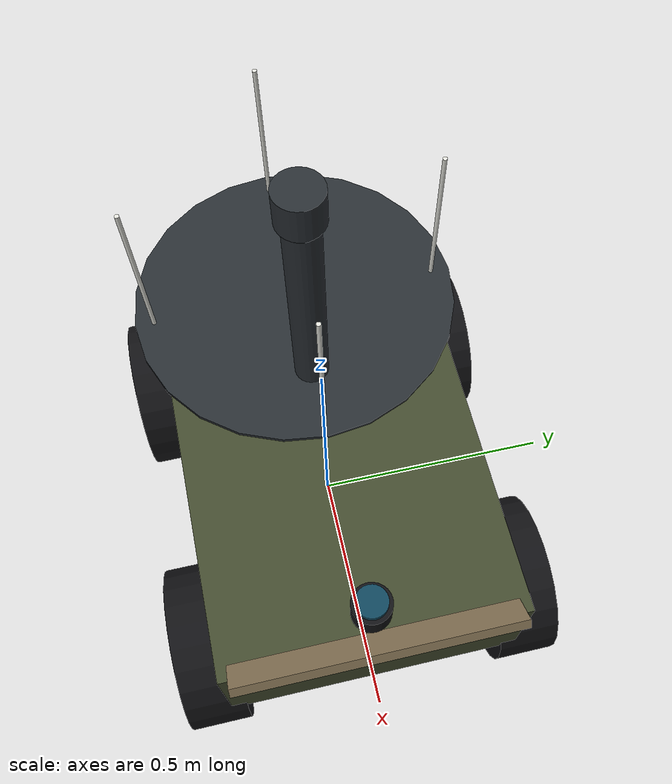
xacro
<?xml version="1.0"?>
<robot name="ugv" xmlns:xacro="http://www.ros.org/wiki/xacro">

  <xacro:arg name="prefix" default=""/>
  <xacro:arg name="namespace" default="ugv_1"/>
  <!-- Keep TF trees disjoint when several of these spawn in one world. -->
  <xacro:arg name="tf_prefix" default="ugv_1"/>

  <xacro:property name="ns" value="$(arg namespace)"/>
  <xacro:property name="tfp" value="$(arg tf_prefix)"/>

  <xacro:include filename="$(find swarm_description)/urdf/common/materials.xacro"/>
  <xacro:include filename="$(find swarm_description)/urdf/common/inertia.xacro"/>
  <xacro:include filename="$(find swarm_description)/urdf/common/sensors.xacro"/>

  <!-- ============================= dimensions ============================ -->
  <xacro:property name="chassis_x" value="0.92"/>
  <xacro:property name="chassis_y" value="0.58"/>
  <xacro:property name="chassis_z" value="0.24"/>
  <xacro:property name="chassis_mass" value="28.0"/>

  <xacro:property name="wheel_radius" value="0.165"/>
  <xacro:property name="wheel_width" value="0.120"/>
  <xacro:property name="wheel_mass" value="2.4"/>
  <xacro:property name="wheelbase" value="0.620"/>
  <xacro:property name="track" value="0.640"/>

  <xacro:property name="mast_height" value="0.46"/>
  <xacro:property name="chassis_z_offset" value="${wheel_radius + 0.045}"/>

  <!-- ============================== base ================================= -->
  <!-- base_footprint sits on the ground plane; nav2 and the costmaps expect it. -->
  <link name="base_footprint"/>

  <joint name="base_joint" type="fixed">
    <parent link="base_footprint"/>
    <child link="base_link"/>
    <origin xyz="0 0 ${chassis_z_offset}" rpy="0 0 0"/>
  </joint>

  <link name="base_link">
    <visual>
      <geometry><box size="${chassis_x} ${chassis_y} ${chassis_z}"/></geometry>
      <material name="olive_drab"/>
    </visual>
    <!-- Sloped glacis plate, forward. -->
    <visual>
      <origin xyz="${chassis_x/2 - 0.04} 0 ${chassis_z/2 - 0.02}" rpy="0 -0.6 0"/>
      <geometry><box size="0.16 ${chassis_y - 0.04} 0.02"/></geometry>
      <material name="coyote_tan"/>
    </visual>
    <collision>
      <geometry><box size="${chassis_x} ${chassis_y} ${chassis_z}"/></geometry>
    </collision>
    <xacro:box_inertial mass="${chassis_mass}" x="${chassis_x}" y="${chassis_y}" z="${chassis_z}">
      <!-- Battery and drivetrain sit low: deliberately low CoG for a skid-steer. -->
      <origin xyz="0 0 -0.055"/>
    </xacro:box_inertial>
  </link>
  <!-- Sensor mast. -->
  <joint name="mast_joint" type="fixed">
    <parent link="base_link"/>
    <child link="mast_link"/>
    <origin xyz="-0.12 0 ${chassis_z/2 + mast_height/2}" rpy="0 0 0"/>
  </joint>
  <link name="mast_link">
    <visual>
      <geometry><cylinder radius="0.035" length="${mast_height}"/></geometry>
      <material name="gunmetal"/>
    </visual>
    <collision><geometry><cylinder radius="0.035" length="${mast_height}"/></geometry></collision>
    <xacro:cylinder_inertial mass="1.1" radius="0.035" length="${mast_height}">
      <origin xyz="0 0 0"/>
    </xacro:cylinder_inertial>
  </link>
  <!-- ============================== wheels ================================ -->
  <xacro:macro name="ugv_wheel" params="name x y">
    <joint name="${name}_wheel_joint" type="continuous">
      <parent link="base_link"/>
      <child link="${name}_wheel_link"/>
      <origin xyz="${x} ${y} ${-chassis_z/2 - 0.045}" rpy="${-pi/2} 0 0"/>
      <axis xyz="0 0 1"/>
      <limit effort="90.0" velocity="22.0"/>
      <dynamics damping="0.08" friction="0.5"/>
    </joint>
    <link name="${name}_wheel_link">
      <visual>
        <geometry><cylinder radius="${wheel_radius}" length="${wheel_width}"/></geometry>
        <material name="matte_black"/>
      </visual>
      <!-- Hub, so the wheel rolling is actually visible in RViz. -->
      <visual>
        <origin xyz="0 0 ${wheel_width/2 + 0.002}"/>
        <geometry><box size="${wheel_radius*1.1} 0.03 0.006"/></geometry>
        <material name="coyote_tan"/>
      </visual>
      <collision>
        <geometry><cylinder radius="${wheel_radius}" length="${wheel_width}"/></geometry>
      </collision>
      <xacro:wheel_inertial mass="${wheel_mass}" radius="${wheel_radius}" width="${wheel_width}">
        <origin xyz="0 0 0"/>
      </xacro:wheel_inertial>
    </link>
  </xacro:macro>

  <xacro:ugv_wheel name="front_left"  x="${wheelbase/2}"  y="${track/2}"/>
  <xacro:ugv_wheel name="front_right" x="${wheelbase/2}"  y="${-track/2}"/>
  <xacro:ugv_wheel name="rear_left"   x="${-wheelbase/2}" y="${track/2}"/>
  <xacro:ugv_wheel name="rear_right"  x="${-wheelbase/2}" y="${-track/2}"/>

  <!-- ============================== sensors =============================== -->
  <!-- Hull-line 2D scanner for local obstacle avoidance / potential fields. -->
  <xacro:lidar_2d prefix="lidar" parent="base_link"
                  xyz="${chassis_x/2 - 0.06} 0 ${chassis_z/2 + 0.045}"
                  samples="720" range_max="30.0" rate="15.0"/>

  <!-- Mast-top 3D scanner: building faces and rubble, for the shared map. -->
  <xacro:lidar_3d prefix="lidar3d" parent="mast_link"
                  xyz="0 0 ${mast_height/2 + 0.05}"
                  h_samples="360" v_samples="16" range_max="40.0" rate="10.0"/>

  <xacro:camera_rgb prefix="front_camera" parent="base_link"
                    xyz="${chassis_x/2 - 0.005} 0 ${chassis_z/2 - 0.01}"
                    hfov="1.5708" width="640" height="480" rate="20.0"/>

  <xacro:imu_sensor prefix="imu" parent="base_link" xyz="0 0 0.02" rate="100.0"/>

  <xacro:gnss_sensor prefix="gnss" parent="mast_link"
                     xyz="0 0 ${mast_height/2 + 0.012}" noise="0.9"/>

  <!-- The team's reference DF array: 4 elements on a 0.30 m baseline. -->
  <xacro:rf_df_array prefix="rf_df" parent="base_link"
                     xyz="-0.30 0 ${chassis_z/2 + 0.01}"
                     elements="4" baseline="0.30" mast="0.34"
                     band_mhz="433.0" sensitivity_dbm="-112.0"/>

  <xacro:marker_dispenser prefix="dispenser" parent="base_link"
                          xyz="-0.10 0 ${-chassis_z/2 - 0.045}" capacity="4"/>

  <!-- ============================= plugins ================================ -->
</robot>

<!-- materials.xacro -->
<robot xmlns:xacro="http://www.ros.org/wiki/xacro">

  <material name="olive_drab"><color rgba="0.26 0.29 0.18 1.0"/></material>
  <material name="coyote_tan"><color rgba="0.52 0.45 0.33 1.0"/></material>
  <material name="gunmetal"><color rgba="0.16 0.18 0.20 1.0"/></material>
  <material name="matte_black"><color rgba="0.07 0.07 0.08 1.0"/></material>
  <material name="sensor_glass"><color rgba="0.10 0.35 0.45 0.85"/></material>
  <material name="hazard_amber"><color rgba="0.90 0.60 0.05 1.0"/></material>
  <material name="signal_red"><color rgba="0.75 0.10 0.10 1.0"/></material>
  <material name="antenna_white"><color rgba="0.88 0.88 0.85 1.0"/></material>
</robot>

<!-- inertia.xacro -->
<robot xmlns:xacro="http://www.ros.org/wiki/xacro">

  <xacro:macro name="box_inertial" params="mass x y z *origin">
    <inertial>
      <xacro:insert_block name="origin"/>
      <mass value="${mass}"/>
      <inertia
        ixx="${mass * (y*y + z*z) / 12.0}" ixy="0.0" ixz="0.0"
        iyy="${mass * (x*x + z*z) / 12.0}" iyz="0.0"
        izz="${mass * (x*x + y*y) / 12.0}"/>
    </inertial>
  </xacro:macro>

  <!-- Cylinder about its own z axis. -->
  <xacro:macro name="cylinder_inertial" params="mass radius length *origin">
    <inertial>
      <xacro:insert_block name="origin"/>
      <mass value="${mass}"/>
      <inertia
        ixx="${mass * (3.0*radius*radius + length*length) / 12.0}" ixy="0.0" ixz="0.0"
        iyy="${mass * (3.0*radius*radius + length*length) / 12.0}" iyz="0.0"
        izz="${mass * radius * radius / 2.0}"/>
    </inertial>
  </xacro:macro>

  <!-- Wheel: cylinder rolling about y, as mounted on these platforms. -->
  <xacro:macro name="wheel_inertial" params="mass radius width *origin">
    <inertial>
      <xacro:insert_block name="origin"/>
      <mass value="${mass}"/>
      <inertia
        ixx="${mass * (3.0*radius*radius + width*width) / 12.0}" ixy="0.0" ixz="0.0"
        iyy="${mass * radius * radius / 2.0}" iyz="0.0"
        izz="${mass * (3.0*radius*radius + width*width) / 12.0}"/>
    </inertial>
  </xacro:macro>

  <xacro:macro name="sphere_inertial" params="mass radius *origin">
    <inertial>
      <xacro:insert_block name="origin"/>
      <mass value="${mass}"/>
      <inertia
        ixx="${2.0 * mass * radius * radius / 5.0}" ixy="0.0" ixz="0.0"
        iyy="${2.0 * mass * radius * radius / 5.0}" iyz="0.0"
        izz="${2.0 * mass * radius * radius / 5.0}"/>
    </inertial>
  </xacro:macro>
</robot>

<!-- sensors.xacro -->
<robot xmlns:xacro="http://www.ros.org/wiki/xacro">
  <xacro:include filename="$(find swarm_description)/urdf/common/inertia.xacro"/>

  <!-- ===================== 2D scanning LiDAR ============================= -->
  <xacro:macro name="lidar_2d" params="prefix parent xyz rpy:='0 0 0'
                                       samples:=720 range_max:=30.0 rate:=15.0
                                       min_angle:=${-pi} max_angle:=${pi}">
    <joint name="${prefix}_joint" type="fixed">
      <parent link="${parent}"/>
      <child link="${prefix}_link"/>
      <origin xyz="${xyz}" rpy="${rpy}"/>
    </joint>
    <link name="${prefix}_link">
      <visual>
        <geometry><cylinder radius="0.038" length="0.055"/></geometry>
        <material name="matte_black"/>
      </visual>
      <visual>
        <origin xyz="0 0 0.034"/>
        <geometry><cylinder radius="0.030" length="0.014"/></geometry>
        <material name="sensor_glass"/>
      </visual>
      <collision><geometry><cylinder radius="0.038" length="0.055"/></geometry></collision>
      <xacro:cylinder_inertial mass="0.18" radius="0.038" length="0.055">
        <origin xyz="0 0 0"/>
      </xacro:cylinder_inertial>
    </link>
  </xacro:macro>

  <!-- =============== 3D LiDAR (tilted multi-layer scanner) =============== -->
  <xacro:macro name="lidar_3d" params="prefix parent xyz rpy:='0 0 0'
                                       h_samples:=360 v_samples:=16 range_max:=40.0 rate:=10.0">
    <joint name="${prefix}_joint" type="fixed">
      <parent link="${parent}"/>
      <child link="${prefix}_link"/>
      <origin xyz="${xyz}" rpy="${rpy}"/>
    </joint>
    <link name="${prefix}_link">
      <visual>
        <geometry><cylinder radius="0.045" length="0.072"/></geometry>
        <material name="gunmetal"/>
      </visual>
      <collision><geometry><cylinder radius="0.045" length="0.072"/></geometry></collision>
      <xacro:cylinder_inertial mass="0.42" radius="0.045" length="0.072">
        <origin xyz="0 0 0"/>
      </xacro:cylinder_inertial>
    </link>
  </xacro:macro>

  <!-- ========================= RGB camera =============================== -->
  <xacro:macro name="camera_rgb" params="prefix parent xyz rpy:='0 0 0'
                                         width:=640 height:=480 hfov:=1.3962
                                         rate:=20.0 topic:=image_raw">
    <joint name="${prefix}_joint" type="fixed">
      <parent link="${parent}"/>
      <child link="${prefix}_link"/>
      <origin xyz="${xyz}" rpy="${rpy}"/>
    </joint>
    <link name="${prefix}_link">
      <visual>
        <geometry><box size="0.028 0.090 0.028"/></geometry>
        <material name="matte_black"/>
      </visual>
      <visual>
        <origin xyz="0.016 0 0"/>
        <geometry><cylinder radius="0.011" length="0.006"/></geometry>
        <origin rpy="0 ${pi/2} 0" xyz="0.016 0 0"/>
        <material name="sensor_glass"/>
      </visual>
      <collision><geometry><box size="0.028 0.090 0.028"/></geometry></collision>
      <xacro:box_inertial mass="0.09" x="0.028" y="0.090" z="0.028">
        <origin xyz="0 0 0"/>
      </xacro:box_inertial>
    </link>
    <!-- REP-103 optical frame: z forward, x right, y down. -->
    <joint name="${prefix}_optical_joint" type="fixed">
      <parent link="${prefix}_link"/>
      <child link="${prefix}_optical_frame"/>
      <origin xyz="0 0 0" rpy="${-pi/2} 0 ${-pi/2}"/>
    </joint>
    <link name="${prefix}_optical_frame"/>
  </xacro:macro>

  <!-- ===================== Uncooled LWIR thermal ========================= -->
  <xacro:macro name="camera_thermal" params="prefix parent xyz rpy:='0 0 0'
                                             width:=320 height:=256 rate:=9.0">
    <joint name="${prefix}_joint" type="fixed">
      <parent link="${parent}"/>
      <child link="${prefix}_link"/>
      <origin xyz="${xyz}" rpy="${rpy}"/>
    </joint>
    <link name="${prefix}_link">
      <visual>
        <geometry><cylinder radius="0.021" length="0.046"/></geometry>
        <origin rpy="0 ${pi/2} 0"/>
        <material name="gunmetal"/>
      </visual>
      <collision>
        <geometry><cylinder radius="0.021" length="0.046"/></geometry>
        <origin rpy="0 ${pi/2} 0"/>
      </collision>
      <xacro:cylinder_inertial mass="0.07" radius="0.021" length="0.046">
        <origin rpy="0 ${pi/2} 0"/>
      </xacro:cylinder_inertial>
    </link>
    <joint name="${prefix}_optical_joint" type="fixed">
      <parent link="${prefix}_link"/>
      <child link="${prefix}_optical_frame"/>
      <origin xyz="0 0 0" rpy="${-pi/2} 0 ${-pi/2}"/>
    </joint>
    <link name="${prefix}_optical_frame"/>
  </xacro:macro>

  <!-- ============================= IMU ================================== -->
  <xacro:macro name="imu_sensor" params="prefix parent xyz rpy:='0 0 0' rate:=100.0">
    <joint name="${prefix}_joint" type="fixed">
      <parent link="${parent}"/>
      <child link="${prefix}_link"/>
      <origin xyz="${xyz}" rpy="${rpy}"/>
    </joint>
    <link name="${prefix}_link">
      <visual>
        <geometry><box size="0.022 0.022 0.007"/></geometry>
        <material name="hazard_amber"/>
      </visual>
      <xacro:box_inertial mass="0.012" x="0.022" y="0.022" z="0.007">
        <origin xyz="0 0 0"/>
      </xacro:box_inertial>
    </link>
  </xacro:macro>

  <!-- ===================== GNSS (degraded / jammable) ==================== -->
  <xacro:macro name="gnss_sensor" params="prefix parent xyz rate:=5.0 noise:=0.9">
    <joint name="${prefix}_joint" type="fixed">
      <parent link="${parent}"/>
      <child link="${prefix}_link"/>
      <origin xyz="${xyz}" rpy="0 0 0"/>
    </joint>
    <link name="${prefix}_link">
      <visual>
        <geometry><cylinder radius="0.030" length="0.012"/></geometry>
        <material name="antenna_white"/>
      </visual>
      <xacro:cylinder_inertial mass="0.045" radius="0.030" length="0.012">
        <origin xyz="0 0 0"/>
      </xacro:cylinder_inertial>
    </link>
  </xacro:macro>

  <!-- ================ RF direction-finding antenna array ================= -->
  <xacro:macro name="rf_df_array" params="prefix parent xyz elements:=4
                                          baseline:=0.18 mast:=0.22
                                          band_mhz:=433.0 sensitivity_dbm:=-105.0">
    <joint name="${prefix}_joint" type="fixed">
      <parent link="${parent}"/>
      <child link="${prefix}_link"/>
      <origin xyz="${xyz}" rpy="0 0 0"/>
    </joint>
    <link name="${prefix}_link">
      <!-- Ground plane the monopoles stand on. -->
      <visual>
        <geometry><cylinder radius="${baseline + 0.04}" length="0.008"/></geometry>
        <material name="gunmetal"/>
      </visual>
      <collision>
        <geometry><cylinder radius="${baseline + 0.04}" length="0.008"/></geometry>
      </collision>
      <xacro:cylinder_inertial mass="0.20" radius="${baseline + 0.04}" length="0.008">
        <origin xyz="0 0 0"/>
      </xacro:cylinder_inertial>
    </link>

    <xacro:macro name="_df_element" params="i">
      <joint name="${prefix}_el${i}_joint" type="fixed">
        <parent link="${prefix}_link"/>
        <child link="${prefix}_el${i}_link"/>
        <origin xyz="${baseline * cos(2.0 * pi * i / elements)}
                     ${baseline * sin(2.0 * pi * i / elements)}
                     ${mast / 2.0 + 0.004}" rpy="0 0 0"/>
      </joint>
      <link name="${prefix}_el${i}_link">
        <visual>
          <geometry><cylinder radius="0.0045" length="${mast}"/></geometry>
          <material name="antenna_white"/>
        </visual>
        <xacro:cylinder_inertial mass="0.015" radius="0.0045" length="${mast}">
          <origin xyz="0 0 0"/>
        </xacro:cylinder_inertial>
      </link>
    </xacro:macro>

    <xacro:_df_element i="0"/>
    <xacro:_df_element i="1"/>
    <xacro:if value="${elements &gt;= 3}"><xacro:_df_element i="2"/></xacro:if>
    <xacro:if value="${elements &gt;= 4}"><xacro:_df_element i="3"/></xacro:if>
    <xacro:if value="${elements &gt;= 5}"><xacro:_df_element i="4"/></xacro:if>
    <xacro:if value="${elements &gt;= 6}"><xacro:_df_element i="5"/></xacro:if>

    <!-- These numbers are read by swarm_gnn/threat_field_node, which supplies
         the propagation physics; the baseline below sets the bearing variance. -->
  </xacro:macro>

  <!-- ====================== CBRN point sampler =========================== -->
  <!-- Pumped intake with a short standoff: a sample is only valid within
       `standoff` metres, which is exactly why the mission plan hands this task
       to the quadruped and not to the drone. -->
  <xacro:macro name="cbrn_sampler" params="prefix parent xyz rpy:='0 0 0'
                                           standoff:=2.5 detect_threshold:=0.15">
    <joint name="${prefix}_joint" type="fixed">
      <parent link="${parent}"/>
      <child link="${prefix}_link"/>
      <origin xyz="${xyz}" rpy="${rpy}"/>
    </joint>
    <link name="${prefix}_link">
      <visual>
        <geometry><box size="0.070 0.048 0.048"/></geometry>
        <material name="hazard_amber"/>
      </visual>
      <!-- Intake snorkel. -->
      <visual>
        <origin xyz="0.046 0 -0.010" rpy="0 ${pi/2} 0"/>
        <geometry><cylinder radius="0.008" length="0.040"/></geometry>
        <material name="matte_black"/>
      </visual>
      <collision><geometry><box size="0.070 0.048 0.048"/></geometry></collision>
      <xacro:box_inertial mass="0.26" x="0.070" y="0.048" z="0.048">
        <origin xyz="0 0 0"/>
      </xacro:box_inertial>
    </link>
  </xacro:macro>

  <!-- ================= Jammer-marker dispenser (UGV) ===================== -->
  <!-- Carries `capacity` expendable RF markers. Emplacing one is the mission's
       terminal action on a confirmed emitter; the count is a hard resource
       constraint the allocator has to respect. -->
  <xacro:macro name="marker_dispenser" params="prefix parent xyz capacity:=4">
    <joint name="${prefix}_joint" type="fixed">
      <parent link="${parent}"/>
      <child link="${prefix}_link"/>
      <origin xyz="${xyz}" rpy="0 0 0"/>
    </joint>
    <link name="${prefix}_link">
      <visual>
        <geometry><box size="0.130 0.110 0.090"/></geometry>
        <material name="olive_drab"/>
      </visual>
      <visual>
        <origin xyz="0 0 -0.050"/>
        <geometry><cylinder radius="0.030" length="0.014"/></geometry>
        <material name="signal_red"/>
      </visual>
      <collision><geometry><box size="0.130 0.110 0.090"/></geometry></collision>
      <xacro:box_inertial mass="${0.6 + 0.25 * capacity}" x="0.130" y="0.110" z="0.090">
        <origin xyz="0 0 0"/>
      </xacro:box_inertial>
    </link>
  </xacro:macro>
</robot>
